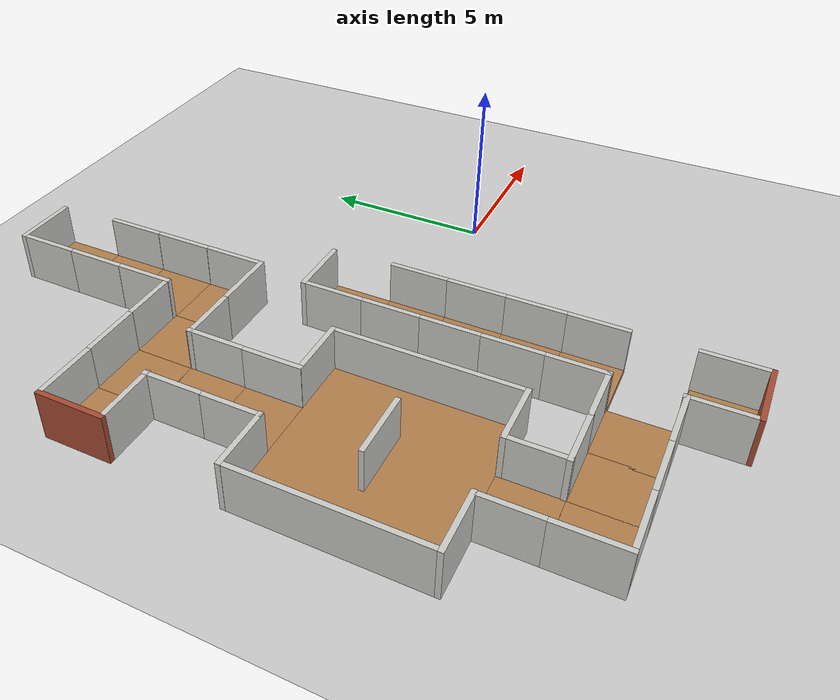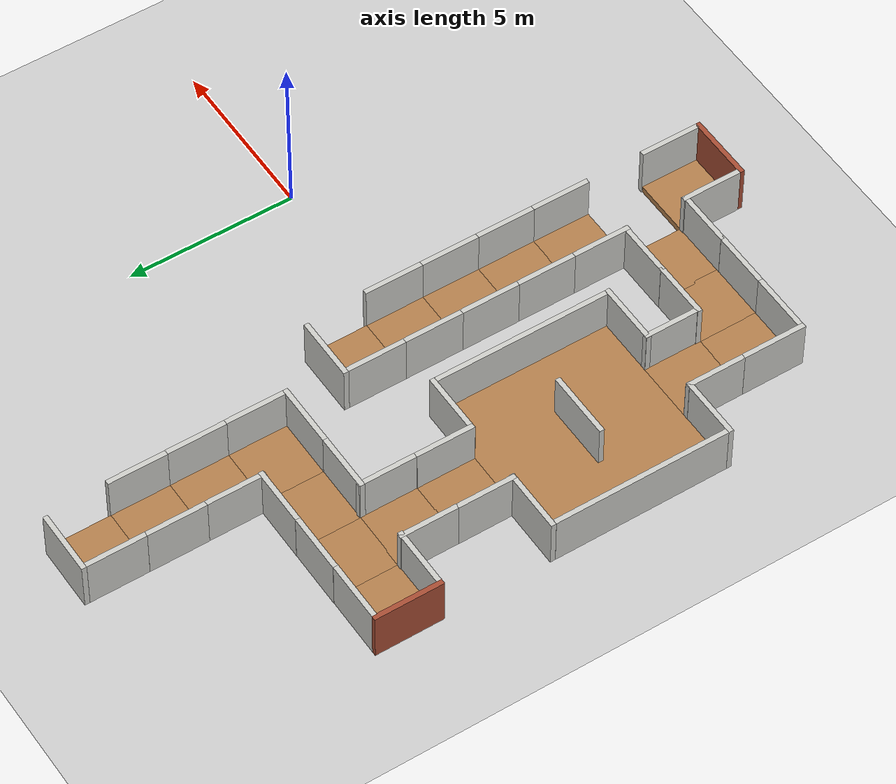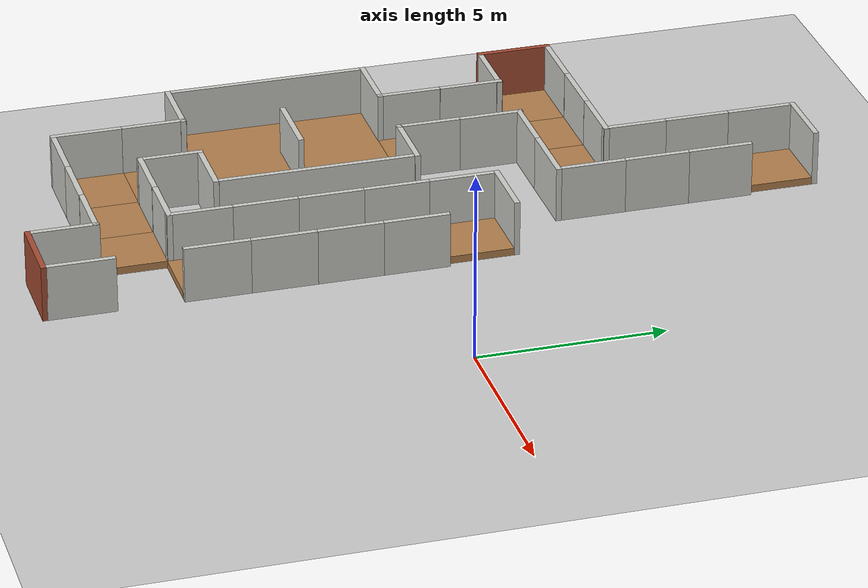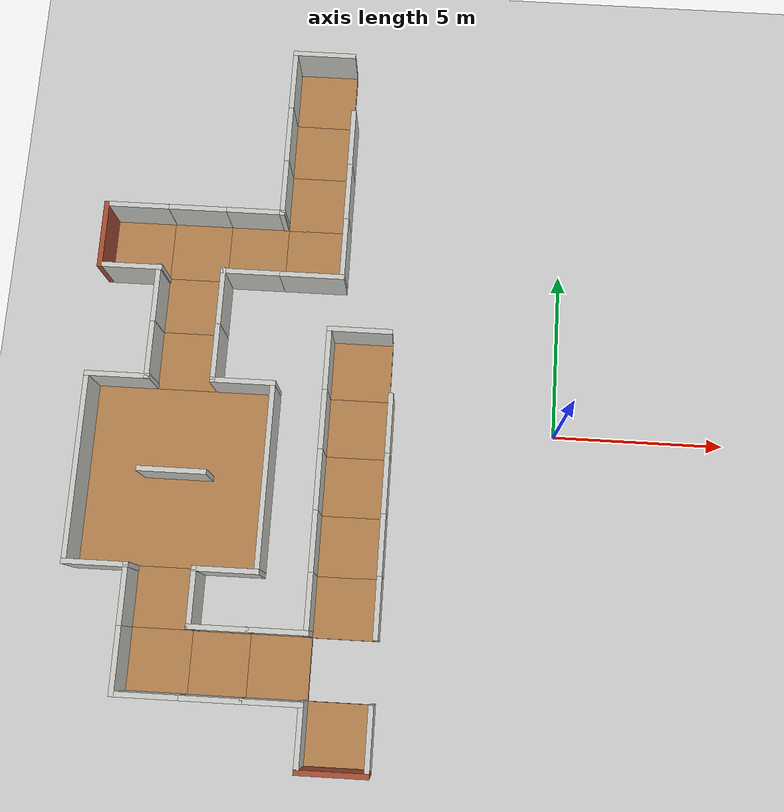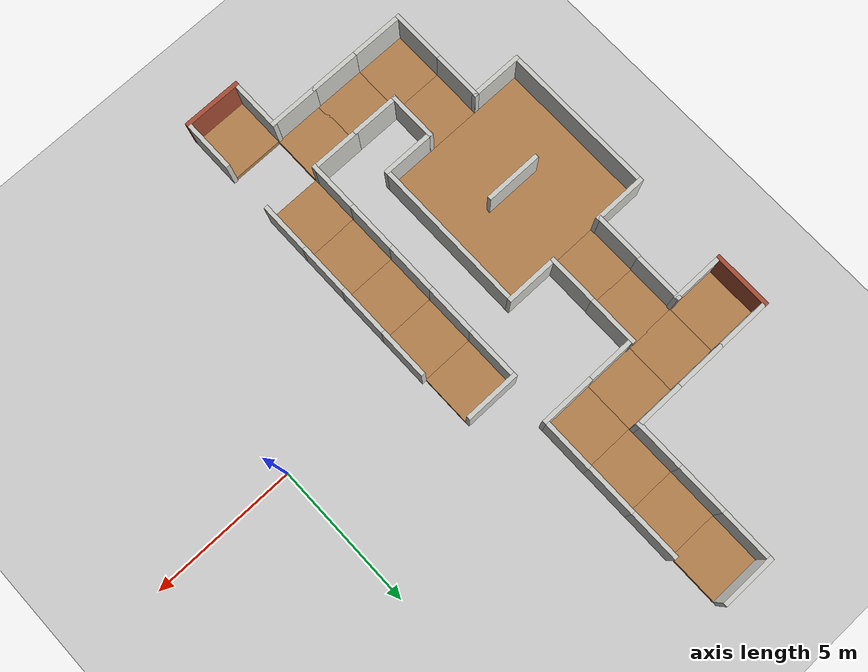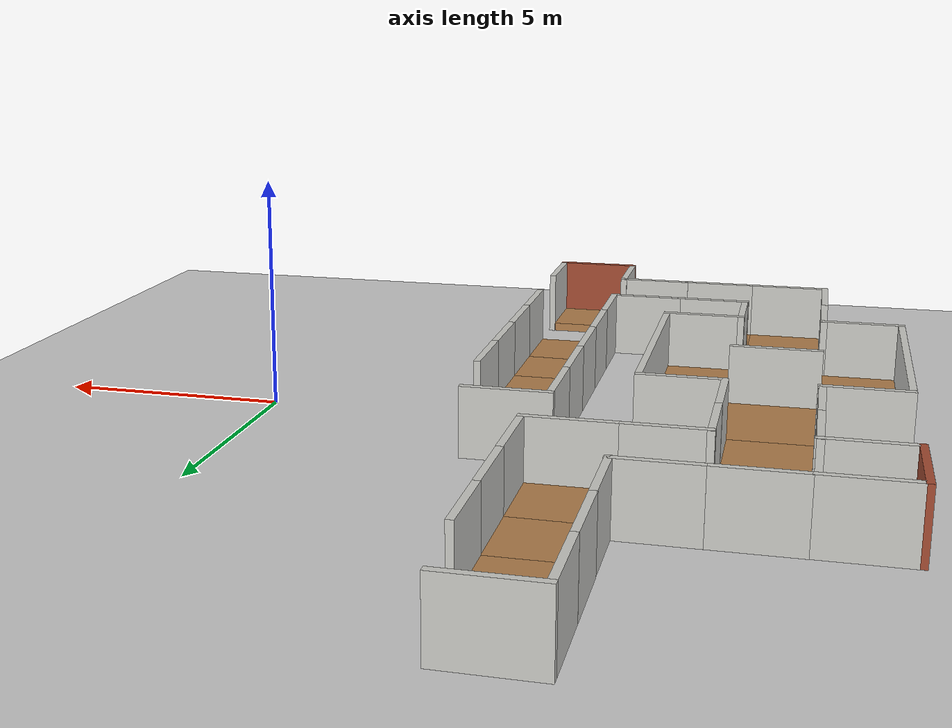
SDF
<sdf version="1.6">
 <world name="default">
  <model name="ground_plane">
   <static>1</static>
   <link name="link">
    <collision name="collision">
     <geometry><plane><normal>0 0 1</normal><size>100 100</size></plane></geometry>
     <surface><friction><ode><mu>100</mu><mu2>50</mu2></ode></friction></surface>
    </collision>
    <visual name="visual">
     <cast_shadows>0</cast_shadows>
     <geometry><plane><normal>0 0 1</normal><size>100 100</size></plane></geometry>
     <material>
      <script><uri>file://media/materials/scripts/gazebo.material</uri><name>Gazebo/Grey</name></script>
     </material>
    </visual>
   </link>
  </model>
  <model name="nerve_corner_9">
   <pose>-5.86899 1.703 0 0 -0 0</pose>
   <link name="Wall_0">
    <collision name="Wall_0_Collision">
     <geometry><box><size>1.76 1.75 0.2</size></box></geometry>
     <pose>0 0 0.1 0 -0 0</pose>
    </collision>
    <visual name="Wall_0_Visual">
     <pose>0 0 0.1 0 -0 0</pose>
     <geometry><box><size>1.76 1.75 0.2</size></box></geometry>
     <material>
      <script><uri>file://media/materials/scripts/gazebo.material</uri><name>Gazebo/Wood</name></script>
      <ambient>1 0.764706 0.305882 1</ambient>
     </material>
    </visual>
    <pose>0.077507 -0.077007 0 0 -0 3.14159</pose>
   </link>
   <link name="Wall_2">
    <collision name="Wall_2_Collision">
     <geometry><box><size>1.75 0.15 1.5</size></box></geometry>
     <pose>0 0 0.75 0 -0 0</pose>
    </collision>
    <visual name="Wall_2_Visual">
     <pose>0 0 0.75 0 -0 0</pose>
     <geometry><box><size>1.75 0.15 1.5</size></box></geometry>
     <material>
      <script><uri>file://media/materials/scripts/gazebo.material</uri><name>Gazebo/CeilingTiled</name></script>
      <ambient>1 0.764706 0.305882 1</ambient>
     </material>
    </visual>
    <pose>-0.882493 -0.073007 0 0 0 -1.5708</pose>
   </link>
   <link name="Wall_4">
    <collision name="Wall_4_Collision">
     <geometry><box><size>1.91042 0.15 1.5</size></box></geometry>
     <pose>0 0 0.75 0 -0 0</pose>
    </collision>
    <visual name="Wall_4_Visual">
     <pose>0 0 0.75 0 -0 0</pose>
     <geometry><box><size>1.91042 0.15 1.5</size></box></geometry>
     <material>
      <script><uri>file://media/materials/scripts/gazebo.material</uri><name>Gazebo/CeilingTiled</name></script>
      <ambient>1 0.764706 0.305882 1</ambient>
     </material>
    </visual>
    <pose>-0.002284 0.876825 0 0 -0 3.1414</pose>
   </link>
   <static>1</static>
  </model>
  <model name="nerve_straight_10">
   <pose>-5.79649 -0.117781 0 0 -0 0</pose>
   <link name="Wall_0">
    <collision name="Wall_0_Collision">
     <geometry><box><size>1.76 1.75 0.2</size></box></geometry>
     <pose>0 0 0.1 0 -0 0</pose>
    </collision>
    <visual name="Wall_0_Visual">
     <pose>0 0 0.1 0 -0 0</pose>
     <geometry><box><size>1.76 1.75 0.2</size></box></geometry>
     <material>
      <script><uri>file://media/materials/scripts/gazebo.material</uri><name>Gazebo/Wood</name></script>
      <ambient>1 0.764706 0.305882 1</ambient>
     </material>
    </visual>
    <pose>0.005 -0.002 0 0 -0 3.14159</pose>
   </link>
   <link name="Wall_2">
    <collision name="Wall_2_Collision">
     <geometry><box><size>1.75 0.15 1.5</size></box></geometry>
     <pose>0 0 0.75 0 -0 0</pose>
    </collision>
    <visual name="Wall_2_Visual">
     <pose>0 0 0.75 0 -0 0</pose>
     <geometry><box><size>1.75 0.15 1.5</size></box></geometry>
     <material>
      <script><uri>file://media/materials/scripts/gazebo.material</uri><name>Gazebo/CeilingTiled</name></script>
      <ambient>1 0.764706 0.305882 1</ambient>
     </material>
    </visual>
    <pose>-0.955 0.002 0 0 0 -1.5708</pose>
   </link>
   <link name="Wall_4">
    <collision name="Wall_4_Collision">
     <geometry><box><size>1.75 0.15 1.5</size></box></geometry>
     <pose>0 0 0.75 0 -0 0</pose>
    </collision>
    <visual name="Wall_4_Visual">
     <pose>0 0 0.75 0 -0 0</pose>
     <geometry><box><size>1.75 0.15 1.5</size></box></geometry>
     <material>
      <script><uri>file://media/materials/scripts/gazebo.material</uri><name>Gazebo/CeilingTiled</name></script>
      <ambient>1 0.764706 0.305882 1</ambient>
     </material>
    </visual>
    <pose>0.955 0.002 0 0 0 -1.5708</pose>
   </link>
   <static>1</static>
  </model>
  <model name="nerve_straight_10_clone">
   <pose>-5.79649 -1.8585 0 0 -0 0</pose>
   <link name="Wall_0">
    <collision name="Wall_0_Collision">
     <geometry><box><size>1.76 1.75 0.2</size></box></geometry>
     <pose>0 0 0.1 0 -0 0</pose>
    </collision>
    <visual name="Wall_0_Visual">
     <pose>0 0 0.1 0 -0 0</pose>
     <geometry><box><size>1.76 1.75 0.2</size></box></geometry>
     <material>
      <script><uri>file://media/materials/scripts/gazebo.material</uri><name>Gazebo/Wood</name></script>
      <ambient>1 0.764706 0.305882 1</ambient>
     </material>
    </visual>
    <pose>0.005 -0.002 0 0 -0 3.14159</pose>
   </link>
   <link name="Wall_2">
    <collision name="Wall_2_Collision">
     <geometry><box><size>1.75 0.15 1.5</size></box></geometry>
     <pose>0 0 0.75 0 -0 0</pose>
    </collision>
    <visual name="Wall_2_Visual">
     <pose>0 0 0.75 0 -0 0</pose>
     <geometry><box><size>1.75 0.15 1.5</size></box></geometry>
     <material>
      <script><uri>file://media/materials/scripts/gazebo.material</uri><name>Gazebo/CeilingTiled</name></script>
      <ambient>1 0.764706 0.305882 1</ambient>
     </material>
    </visual>
    <pose>-0.955 0.002 0 0 0 -1.5708</pose>
   </link>
   <link name="Wall_4">
    <collision name="Wall_4_Collision">
     <geometry><box><size>1.75 0.15 1.5</size></box></geometry>
     <pose>0 0 0.75 0 -0 0</pose>
    </collision>
    <visual name="Wall_4_Visual">
     <pose>0 0 0.75 0 -0 0</pose>
     <geometry><box><size>1.75 0.15 1.5</size></box></geometry>
     <material>
      <script><uri>file://media/materials/scripts/gazebo.material</uri><name>Gazebo/CeilingTiled</name></script>
      <ambient>1 0.764706 0.305882 1</ambient>
     </material>
    </visual>
    <pose>0.955 0.002 0 0 0 -1.5708</pose>
   </link>
   <static>1</static>
  </model>
  <model name="nerve_straight_10_clone_0">
   <pose>-5.79649 -3.60725 0 0 -0 0</pose>
   <link name="Wall_0">
    <collision name="Wall_0_Collision">
     <geometry><box><size>1.76 1.75 0.2</size></box></geometry>
     <pose>0 0 0.1 0 -0 0</pose>
    </collision>
    <visual name="Wall_0_Visual">
     <pose>0 0 0.1 0 -0 0</pose>
     <geometry><box><size>1.76 1.75 0.2</size></box></geometry>
     <material>
      <script><uri>file://media/materials/scripts/gazebo.material</uri><name>Gazebo/Wood</name></script>
      <ambient>1 0.764706 0.305882 1</ambient>
     </material>
    </visual>
    <pose>0.005 -0.002 0 0 -0 3.14159</pose>
   </link>
   <link name="Wall_2">
    <collision name="Wall_2_Collision">
     <geometry><box><size>1.75 0.15 1.5</size></box></geometry>
     <pose>0 0 0.75 0 -0 0</pose>
    </collision>
    <visual name="Wall_2_Visual">
     <pose>0 0 0.75 0 -0 0</pose>
     <geometry><box><size>1.75 0.15 1.5</size></box></geometry>
     <material>
      <script><uri>file://media/materials/scripts/gazebo.material</uri><name>Gazebo/CeilingTiled</name></script>
      <ambient>1 0.764706 0.305882 1</ambient>
     </material>
    </visual>
    <pose>-0.955 0.002 0 0 0 -1.5708</pose>
   </link>
   <link name="Wall_4">
    <collision name="Wall_4_Collision">
     <geometry><box><size>1.75 0.15 1.5</size></box></geometry>
     <pose>0 0 0.75 0 -0 0</pose>
    </collision>
    <visual name="Wall_4_Visual">
     <pose>0 0 0.75 0 -0 0</pose>
     <geometry><box><size>1.75 0.15 1.5</size></box></geometry>
     <material>
      <script><uri>file://media/materials/scripts/gazebo.material</uri><name>Gazebo/CeilingTiled</name></script>
      <ambient>1 0.764706 0.305882 1</ambient>
     </material>
    </visual>
    <pose>0.955 0.002 0 0 0 -1.5708</pose>
   </link>
   <static>1</static>
  </model>
  <model name="nerve_straight_10_clone_1">
   <pose>-5.79649 -5.34509 0 0 -0 0</pose>
   <link name="Wall_0">
    <collision name="Wall_0_Collision">
     <geometry><box><size>1.76 1.75 0.2</size></box></geometry>
     <pose>0 0 0.1 0 -0 0</pose>
    </collision>
    <visual name="Wall_0_Visual">
     <pose>0 0 0.1 0 -0 0</pose>
     <geometry><box><size>1.76 1.75 0.2</size></box></geometry>
     <material>
      <script><uri>file://media/materials/scripts/gazebo.material</uri><name>Gazebo/Wood</name></script>
      <ambient>1 0.764706 0.305882 1</ambient>
     </material>
    </visual>
    <pose>0.005 -0.002 0 0 -0 3.14159</pose>
   </link>
   <link name="Wall_2">
    <collision name="Wall_2_Collision">
     <geometry><box><size>1.75 0.15 1.5</size></box></geometry>
     <pose>0 0 0.75 0 -0 0</pose>
    </collision>
    <visual name="Wall_2_Visual">
     <pose>0 0 0.75 0 -0 0</pose>
     <geometry><box><size>1.75 0.15 1.5</size></box></geometry>
     <material>
      <script><uri>file://media/materials/scripts/gazebo.material</uri><name>Gazebo/CeilingTiled</name></script>
      <ambient>1 0.764706 0.305882 1</ambient>
     </material>
    </visual>
    <pose>-0.955 0.002 0 0 0 -1.5708</pose>
   </link>
   <link name="Wall_4">
    <collision name="Wall_4_Collision">
     <geometry><box><size>1.75 0.15 1.5</size></box></geometry>
     <pose>0 0 0.75 0 -0 0</pose>
    </collision>
    <visual name="Wall_4_Visual">
     <pose>0 0 0.75 0 -0 0</pose>
     <geometry><box><size>1.75 0.15 1.5</size></box></geometry>
     <material>
      <script><uri>file://media/materials/scripts/gazebo.material</uri><name>Gazebo/CeilingTiled</name></script>
      <ambient>1 0.764706 0.305882 1</ambient>
     </material>
    </visual>
    <pose>0.955 0.002 0 0 0 -1.5708</pose>
   </link>
   <static>1</static>
  </model>
  <model name="nerve_corner_11">
   <pose>-11.0361 -7.16167 0 0 -0 1.5708</pose>
   <link name="Wall_0">
    <collision name="Wall_0_Collision">
     <geometry><box><size>1.76 1.75 0.2</size></box></geometry>
     <pose>0 0 0.1 0 -0 0</pose>
    </collision>
    <visual name="Wall_0_Visual">
     <pose>0 0 0.1 0 -0 0</pose>
     <geometry><box><size>1.76 1.75 0.2</size></box></geometry>
     <material>
      <script><uri>file://media/materials/scripts/gazebo.material</uri><name>Gazebo/Wood</name></script>
      <ambient>1 0.764706 0.305882 1</ambient>
     </material>
    </visual>
    <pose>0.077507 -0.077007 0 0 -0 3.14159</pose>
   </link>
   <link name="Wall_2">
    <collision name="Wall_2_Collision">
     <geometry><box><size>1.75 0.15 1.5</size></box></geometry>
     <pose>0 0 0.75 0 -0 0</pose>
    </collision>
    <visual name="Wall_2_Visual">
     <pose>0 0 0.75 0 -0 0</pose>
     <geometry><box><size>1.75 0.15 1.5</size></box></geometry>
     <material>
      <script><uri>file://media/materials/scripts/gazebo.material</uri><name>Gazebo/CeilingTiled</name></script>
      <ambient>1 0.764706 0.305882 1</ambient>
     </material>
    </visual>
    <pose>-0.882493 -0.073007 0 0 0 -1.5708</pose>
   </link>
   <link name="Wall_4">
    <collision name="Wall_4_Collision">
     <geometry><box><size>1.91042 0.15 1.5</size></box></geometry>
     <pose>0 0 0.75 0 -0 0</pose>
    </collision>
    <visual name="Wall_4_Visual">
     <pose>0 0 0.75 0 -0 0</pose>
     <geometry><box><size>1.91042 0.15 1.5</size></box></geometry>
     <material>
      <script><uri>file://media/materials/scripts/gazebo.material</uri><name>Gazebo/CeilingTiled</name></script>
      <ambient>1 0.764706 0.305882 1</ambient>
     </material>
    </visual>
    <pose>-0.002284 0.876825 0 0 -0 3.1414</pose>
   </link>
   <static>1</static>
  </model>
  <model name="nerve_straight_10_clone_1_clone">
   <pose>-10.9569 -5.3391 0 0 -0 0</pose>
   <link name="Wall_0">
    <collision name="Wall_0_Collision">
     <geometry><box><size>1.76 1.75 0.2</size></box></geometry>
     <pose>0 0 0.1 0 -0 0</pose>
    </collision>
    <visual name="Wall_0_Visual">
     <pose>0 0 0.1 0 -0 0</pose>
     <geometry><box><size>1.76 1.75 0.2</size></box></geometry>
     <material>
      <script><uri>file://media/materials/scripts/gazebo.material</uri><name>Gazebo/Wood</name></script>
      <ambient>1 0.764706 0.305882 1</ambient>
     </material>
    </visual>
    <pose>0.005 -0.002 0 0 -0 3.14159</pose>
   </link>
   <link name="Wall_2">
    <collision name="Wall_2_Collision">
     <geometry><box><size>1.75 0.15 1.5</size></box></geometry>
     <pose>0 0 0.75 0 -0 0</pose>
    </collision>
    <visual name="Wall_2_Visual">
     <pose>0 0 0.75 0 -0 0</pose>
     <geometry><box><size>1.75 0.15 1.5</size></box></geometry>
     <material>
      <script><uri>file://media/materials/scripts/gazebo.material</uri><name>Gazebo/CeilingTiled</name></script>
      <ambient>1 0.764706 0.305882 1</ambient>
     </material>
    </visual>
    <pose>-0.955 0.002 0 0 0 -1.5708</pose>
   </link>
   <link name="Wall_4">
    <collision name="Wall_4_Collision">
     <geometry><box><size>1.75 0.15 1.5</size></box></geometry>
     <pose>0 0 0.75 0 -0 0</pose>
    </collision>
    <visual name="Wall_4_Visual">
     <pose>0 0 0.75 0 -0 0</pose>
     <geometry><box><size>1.75 0.15 1.5</size></box></geometry>
     <material>
      <script><uri>file://media/materials/scripts/gazebo.material</uri><name>Gazebo/CeilingTiled</name></script>
      <ambient>1 0.764706 0.305882 1</ambient>
     </material>
    </visual>
    <pose>0.955 0.002 0 0 0 -1.5708</pose>
   </link>
   <static>1</static>
  </model>
  <model name="nerve_straight_10_clone_1_clone_0">
   <pose>-7.54894 -7.08598 0 0 0 -1.5708</pose>
   <link name="Wall_0">
    <collision name="Wall_0_Collision">
     <geometry><box><size>1.76 1.75 0.2</size></box></geometry>
     <pose>0 0 0.1 0 -0 0</pose>
    </collision>
    <visual name="Wall_0_Visual">
     <pose>0 0 0.1 0 -0 0</pose>
     <geometry><box><size>1.76 1.75 0.2</size></box></geometry>
     <material>
      <script><uri>file://media/materials/scripts/gazebo.material</uri><name>Gazebo/Wood</name></script>
      <ambient>1 0.764706 0.305882 1</ambient>
     </material>
    </visual>
    <pose>0.005 -0.002 0 0 -0 3.14159</pose>
   </link>
   <link name="Wall_2">
    <collision name="Wall_2_Collision">
     <geometry><box><size>1.75 0.15 1.5</size></box></geometry>
     <pose>0 0 0.75 0 -0 0</pose>
    </collision>
    <visual name="Wall_2_Visual">
     <pose>0 0 0.75 0 -0 0</pose>
     <geometry><box><size>1.75 0.15 1.5</size></box></geometry>
     <material>
      <script><uri>file://media/materials/scripts/gazebo.material</uri><name>Gazebo/CeilingTiled</name></script>
      <ambient>1 0.764706 0.305882 1</ambient>
     </material>
    </visual>
    <pose>-0.955 0.002 0 0 0 -1.5708</pose>
   </link>
   <link name="Wall_4">
    <collision name="Wall_4_Collision">
     <geometry><box><size>1.75 0.15 1.5</size></box></geometry>
     <pose>0 0 0.75 0 -0 0</pose>
    </collision>
    <visual name="Wall_4_Visual">
     <pose>0 0 0.75 0 -0 0</pose>
     <geometry><box><size>1.75 0.15 1.5</size></box></geometry>
     <material>
      <script><uri>file://media/materials/scripts/gazebo.material</uri><name>Gazebo/CeilingTiled</name></script>
      <ambient>1 0.764706 0.305882 1</ambient>
     </material>
    </visual>
    <pose>0.955 0.002 0 0 0 -1.5708</pose>
   </link>
   <static>1</static>
  </model>
  <model name="nerve_room_3x3_split">
   <pose>-10.9537 -1.84017 0 0 -0 0</pose>
   <link name="Wall_11">
    <collision name="Wall_11_Collision">
     <geometry><box><size>5.25 0.15 1.5</size></box></geometry>
     <pose>0 0 0.75 0 -0 0</pose>
    </collision>
    <visual name="Wall_11_Visual">
     <pose>0 0 0.75 0 -0 0</pose>
     <geometry><box><size>5.25 0.15 1.5</size></box></geometry>
     <material>
      <script><uri>file://media/materials/scripts/gazebo.material</uri><name>Gazebo/CeilingTiled</name></script>
      <ambient>1 0.764706 0.305882 1</ambient>
     </material>
    </visual>
    <pose>-2.69653 -0.003278 0 0 0 -1.5708</pose>
   </link>
   <link name="Wall_13">
    <collision name="Wall_13_Collision">
     <geometry><box><size>5.25 0.15 1.5</size></box></geometry>
     <pose>0 0 0.75 0 -0 0</pose>
    </collision>
    <visual name="Wall_13_Visual">
     <pose>0 0 0.75 0 -0 0</pose>
     <geometry><box><size>5.25 0.15 1.5</size></box></geometry>
     <material>
      <script><uri>file://media/materials/scripts/gazebo.material</uri><name>Gazebo/CeilingTiled</name></script>
      <ambient>1 0.764706 0.305882 1</ambient>
     </material>
    </visual>
    <pose>2.69688 -0.000452 0 0 0 -1.5708</pose>
   </link>
   <link name="Wall_15">
    <collision name="Wall_15_Collision">
     <geometry><box><size>1.9 0.15 1.5</size></box></geometry>
     <pose>0 0 0.75 0 -0 0</pose>
    </collision>
    <visual name="Wall_15_Visual">
     <pose>0 0 0.75 0 -0 0</pose>
     <geometry><box><size>1.9 0.15 1.5</size></box></geometry>
     <material>
      <script><uri>file://media/materials/scripts/gazebo.material</uri><name>Gazebo/CeilingTiled</name></script>
      <ambient>1 0.764706 0.305882 1</ambient>
     </material>
    </visual>
    <pose>-1.82279 -2.70217 0 0 -0 0</pose>
   </link>
   <link name="Wall_17">
    <collision name="Wall_17_Collision">
     <geometry><box><size>1.9 0.15 1.5</size></box></geometry>
     <pose>0 0 0.75 0 -0 0</pose>
    </collision>
    <visual name="Wall_17_Visual">
     <pose>0 0 0.75 0 -0 0</pose>
     <geometry><box><size>1.9 0.15 1.5</size></box></geometry>
     <material>
      <script><uri>file://media/materials/scripts/gazebo.material</uri><name>Gazebo/CeilingTiled</name></script>
      <ambient>1 0.764706 0.305882 1</ambient>
     </material>
    </visual>
    <pose>-1.82219 2.69878 0 0 -0 0</pose>
   </link>
   <link name="Wall_19">
    <collision name="Wall_19_Collision">
     <geometry><box><size>1.9 0.15 1.5</size></box></geometry>
     <pose>0 0 0.75 0 -0 0</pose>
    </collision>
    <visual name="Wall_19_Visual">
     <pose>0 0 0.75 0 -0 0</pose>
     <geometry><box><size>1.9 0.15 1.5</size></box></geometry>
     <material>
      <script><uri>file://media/materials/scripts/gazebo.material</uri><name>Gazebo/CeilingTiled</name></script>
      <ambient>1 0.764706 0.305882 1</ambient>
     </material>
    </visual>
    <pose>1.82194 2.70217 0 0 -0 0</pose>
   </link>
   <link name="Wall_21">
    <collision name="Wall_21_Collision">
     <geometry><box><size>1.9 0.15 1.5</size></box></geometry>
     <pose>0 0 0.75 0 -0 0</pose>
    </collision>
    <visual name="Wall_21_Visual">
     <pose>0 0 0.75 0 -0 0</pose>
     <geometry><box><size>1.9 0.15 1.5</size></box></geometry>
     <material>
      <script><uri>file://media/materials/scripts/gazebo.material</uri><name>Gazebo/CeilingTiled</name></script>
      <ambient>1 0.764706 0.305882 1</ambient>
     </material>
    </visual>
    <pose>1.82279 -2.70173 0 0 -0 0</pose>
   </link>
   <link name="Wall_23">
    <collision name="Wall_23_Collision">
     <geometry><box><size>2 0.15 1.5</size></box></geometry>
     <pose>0 0 0.75 0 -0 0</pose>
    </collision>
    <visual name="Wall_23_Visual">
     <pose>0 0 0.75 0 -0 0</pose>
     <geometry><box><size>2 0.15 1.5</size></box></geometry>
     <material>
      <script><uri>file://media/materials/scripts/gazebo.material</uri><name>Gazebo/CeilingTiled</name></script>
      <ambient>1 0.764706 0.305882 1</ambient>
     </material>
    </visual>
    <pose>0.033144 0.01482 0 0 -0 0</pose>
   </link>
   <link name="Wall_6">
    <collision name="Wall_6_Collision">
     <geometry><box><size>5.26 5.25 0.2</size></box></geometry>
     <pose>0 0 0.1 0 -0 0</pose>
    </collision>
    <visual name="Wall_6_Visual">
     <pose>0 0 0.1 0 -0 0</pose>
     <geometry><box><size>5.26 5.25 0.2</size></box></geometry>
     <material>
      <script><uri>file://media/materials/scripts/gazebo.material</uri><name>Gazebo/Wood</name></script>
      <ambient>1 0.764706 0.305882 1</ambient>
     </material>
    </visual>
    <pose>-0.001194 0.003047 0 0 -0 1.5708</pose>
   </link>
   <static>1</static>
  </model>
  <model name="nerve_straight_10_clone_1_clone_0_clone">
   <pose>-9.21654 -7.08997 0 0 0 -1.5708</pose>
   <link name="Wall_0">
    <collision name="Wall_0_Collision">
     <geometry><box><size>1.76 1.75 0.2</size></box></geometry>
     <pose>0 0 0.1 0 -0 0</pose>
    </collision>
    <visual name="Wall_0_Visual">
     <pose>0 0 0.1 0 -0 0</pose>
     <geometry><box><size>1.76 1.75 0.2</size></box></geometry>
     <material>
      <script><uri>file://media/materials/scripts/gazebo.material</uri><name>Gazebo/Wood</name></script>
      <ambient>1 0.764706 0.305882 1</ambient>
     </material>
    </visual>
    <pose>0.005 -0.002 0 0 -0 3.14159</pose>
   </link>
   <link name="Wall_2">
    <collision name="Wall_2_Collision">
     <geometry><box><size>1.75 0.15 1.5</size></box></geometry>
     <pose>0 0 0.75 0 -0 0</pose>
    </collision>
    <visual name="Wall_2_Visual">
     <pose>0 0 0.75 0 -0 0</pose>
     <geometry><box><size>1.75 0.15 1.5</size></box></geometry>
     <material>
      <script><uri>file://media/materials/scripts/gazebo.material</uri><name>Gazebo/CeilingTiled</name></script>
      <ambient>1 0.764706 0.305882 1</ambient>
     </material>
    </visual>
    <pose>-0.955 0.002 0 0 0 -1.5708</pose>
   </link>
   <link name="Wall_4">
    <collision name="Wall_4_Collision">
     <geometry><box><size>1.75 0.15 1.5</size></box></geometry>
     <pose>0 0 0.75 0 -0 0</pose>
    </collision>
    <visual name="Wall_4_Visual">
     <pose>0 0 0.75 0 -0 0</pose>
     <geometry><box><size>1.75 0.15 1.5</size></box></geometry>
     <material>
      <script><uri>file://media/materials/scripts/gazebo.material</uri><name>Gazebo/CeilingTiled</name></script>
      <ambient>1 0.764706 0.305882 1</ambient>
     </material>
    </visual>
    <pose>0.955 0.002 0 0 0 -1.5708</pose>
   </link>
   <static>1</static>
  </model>
  <model name="nerve_straight_10_clone_0_clone">
   <pose>-10.9639 1.66579 0 0 -0 0</pose>
   <link name="Wall_0">
    <collision name="Wall_0_Collision">
     <geometry><box><size>1.76 1.75 0.2</size></box></geometry>
     <pose>0 0 0.1 0 -0 0</pose>
    </collision>
    <visual name="Wall_0_Visual">
     <pose>0 0 0.1 0 -0 0</pose>
     <geometry><box><size>1.76 1.75 0.2</size></box></geometry>
     <material>
      <script><uri>file://media/materials/scripts/gazebo.material</uri><name>Gazebo/Wood</name></script>
      <ambient>1 0.764706 0.305882 1</ambient>
     </material>
    </visual>
    <pose>0.005 -0.002 0 0 -0 3.14159</pose>
   </link>
   <link name="Wall_2">
    <collision name="Wall_2_Collision">
     <geometry><box><size>1.75 0.15 1.5</size></box></geometry>
     <pose>0 0 0.75 0 -0 0</pose>
    </collision>
    <visual name="Wall_2_Visual">
     <pose>0 0 0.75 0 -0 0</pose>
     <geometry><box><size>1.75 0.15 1.5</size></box></geometry>
     <material>
      <script><uri>file://media/materials/scripts/gazebo.material</uri><name>Gazebo/CeilingTiled</name></script>
      <ambient>1 0.764706 0.305882 1</ambient>
     </material>
    </visual>
    <pose>-0.955 0.002 0 0 0 -1.5708</pose>
   </link>
   <link name="Wall_4">
    <collision name="Wall_4_Collision">
     <geometry><box><size>1.75 0.15 1.5</size></box></geometry>
     <pose>0 0 0.75 0 -0 0</pose>
    </collision>
    <visual name="Wall_4_Visual">
     <pose>0 0 0.75 0 -0 0</pose>
     <geometry><box><size>1.75 0.15 1.5</size></box></geometry>
     <material>
      <script><uri>file://media/materials/scripts/gazebo.material</uri><name>Gazebo/CeilingTiled</name></script>
      <ambient>1 0.764706 0.305882 1</ambient>
     </material>
    </visual>
    <pose>0.955 0.002 0 0 0 -1.5708</pose>
   </link>
   <static>1</static>
  </model>
  <model name="nerve_straight_10_clone_0_clone_0">
   <pose>-10.9587 3.39384 0 0 -0 0</pose>
   <link name="Wall_0">
    <collision name="Wall_0_Collision">
     <geometry><box><size>1.76 1.75 0.2</size></box></geometry>
     <pose>0 0 0.1 0 -0 0</pose>
    </collision>
    <visual name="Wall_0_Visual">
     <pose>0 0 0.1 0 -0 0</pose>
     <geometry><box><size>1.76 1.75 0.2</size></box></geometry>
     <material>
      <script><uri>file://media/materials/scripts/gazebo.material</uri><name>Gazebo/Wood</name></script>
      <ambient>1 0.764706 0.305882 1</ambient>
     </material>
    </visual>
    <pose>0.005 -0.002 0 0 -0 3.14159</pose>
   </link>
   <link name="Wall_2">
    <collision name="Wall_2_Collision">
     <geometry><box><size>1.75 0.15 1.5</size></box></geometry>
     <pose>0 0 0.75 0 -0 0</pose>
    </collision>
    <visual name="Wall_2_Visual">
     <pose>0 0 0.75 0 -0 0</pose>
     <geometry><box><size>1.75 0.15 1.5</size></box></geometry>
     <material>
      <script><uri>file://media/materials/scripts/gazebo.material</uri><name>Gazebo/CeilingTiled</name></script>
      <ambient>1 0.764706 0.305882 1</ambient>
     </material>
    </visual>
    <pose>-0.955 0.002 0 0 0 -1.5708</pose>
   </link>
   <link name="Wall_4">
    <collision name="Wall_4_Collision">
     <geometry><box><size>1.75 0.15 1.5</size></box></geometry>
     <pose>0 0 0.75 0 -0 0</pose>
    </collision>
    <visual name="Wall_4_Visual">
     <pose>0 0 0.75 0 -0 0</pose>
     <geometry><box><size>1.75 0.15 1.5</size></box></geometry>
     <material>
      <script><uri>file://media/materials/scripts/gazebo.material</uri><name>Gazebo/CeilingTiled</name></script>
      <ambient>1 0.764706 0.305882 1</ambient>
     </material>
    </visual>
    <pose>0.955 0.002 0 0 0 -1.5708</pose>
   </link>
   <static>1</static>
  </model>
  <model name="nerve_straight_9_clone">
   <pose>-9.20822 5.12464 0 0 0 -1.5708</pose>
   <link name="Wall_0">
    <collision name="Wall_0_Collision">
     <geometry><box><size>1.76 1.75 0.2</size></box></geometry>
     <pose>0 0 0.1 0 -0 0</pose>
    </collision>
    <visual name="Wall_0_Visual">
     <pose>0 0 0.1 0 -0 0</pose>
     <geometry><box><size>1.76 1.75 0.2</size></box></geometry>
     <material>
      <script><uri>file://media/materials/scripts/gazebo.material</uri><name>Gazebo/Wood</name></script>
      <ambient>1 0.764706 0.305882 1</ambient>
     </material>
    </visual>
    <pose>0.005 -0.002 0 0 -0 3.14159</pose>
   </link>
   <link name="Wall_2">
    <collision name="Wall_2_Collision">
     <geometry><box><size>1.75 0.15 1.5</size></box></geometry>
     <pose>0 0 0.75 0 -0 0</pose>
    </collision>
    <visual name="Wall_2_Visual">
     <pose>0 0 0.75 0 -0 0</pose>
     <geometry><box><size>1.75 0.15 1.5</size></box></geometry>
     <material>
      <script><uri>file://media/materials/scripts/gazebo.material</uri><name>Gazebo/CeilingTiled</name></script>
      <ambient>1 0.764706 0.305882 1</ambient>
     </material>
    </visual>
    <pose>-0.955 0.002 0 0 0 -1.5708</pose>
   </link>
   <link name="Wall_4">
    <collision name="Wall_4_Collision">
     <geometry><box><size>1.75 0.15 1.5</size></box></geometry>
     <pose>0 0 0.75 0 -0 0</pose>
    </collision>
    <visual name="Wall_4_Visual">
     <pose>0 0 0.75 0 -0 0</pose>
     <geometry><box><size>1.75 0.15 1.5</size></box></geometry>
     <material>
      <script><uri>file://media/materials/scripts/gazebo.material</uri><name>Gazebo/CeilingTiled</name></script>
      <ambient>1 0.764706 0.305882 1</ambient>
     </material>
    </visual>
    <pose>0.955 0.002 0 0 0 -1.5708</pose>
   </link>
   <static>1</static>
  </model>
  <model name="nerve_corner_8_clone_clone">
   <pose>-7.38532 5.04633 0 0 0 -3.14159</pose>
   <link name="Wall_0">
    <collision name="Wall_0_Collision">
     <geometry><box><size>1.76 1.75 0.2</size></box></geometry>
     <pose>0 0 0.1 0 -0 0</pose>
    </collision>
    <visual name="Wall_0_Visual">
     <pose>0 0 0.1 0 -0 0</pose>
     <geometry><box><size>1.76 1.75 0.2</size></box></geometry>
     <material>
      <script><uri>file://media/materials/scripts/gazebo.material</uri><name>Gazebo/Wood</name></script>
      <ambient>1 0.764706 0.305882 1</ambient>
     </material>
    </visual>
    <pose>0.077507 -0.077007 0 0 -0 3.14159</pose>
   </link>
   <link name="Wall_2">
    <collision name="Wall_2_Collision">
     <geometry><box><size>1.75 0.15 1.5</size></box></geometry>
     <pose>0 0 0.75 0 -0 0</pose>
    </collision>
    <visual name="Wall_2_Visual">
     <pose>0 0 0.75 0 -0 0</pose>
     <geometry><box><size>1.75 0.15 1.5</size></box></geometry>
     <material>
      <script><uri>file://media/materials/scripts/gazebo.material</uri><name>Gazebo/CeilingTiled</name></script>
      <ambient>1 0.764706 0.305882 1</ambient>
     </material>
    </visual>
    <pose>-0.882493 -0.073007 0 0 0 -1.5708</pose>
   </link>
   <link name="Wall_4">
    <collision name="Wall_4_Collision">
     <geometry><box><size>1.91042 0.15 1.5</size></box></geometry>
     <pose>0 0 0.75 0 -0 0</pose>
    </collision>
    <visual name="Wall_4_Visual">
     <pose>0 0 0.75 0 -0 0</pose>
     <geometry><box><size>1.91042 0.15 1.5</size></box></geometry>
     <material>
      <script><uri>file://media/materials/scripts/gazebo.material</uri><name>Gazebo/CeilingTiled</name></script>
      <ambient>1 0.764706 0.305882 1</ambient>
     </material>
    </visual>
    <pose>-0.002284 0.876825 0 0 -0 3.1414</pose>
   </link>
   <static>1</static>
  </model>
  <model name="nerve_straight_10_clone_clone">
   <pose>-7.46548 6.86517 0 0 -0 0</pose>
   <link name="Wall_0">
    <collision name="Wall_0_Collision">
     <geometry><box><size>1.76 1.75 0.2</size></box></geometry>
     <pose>0 0 0.1 0 -0 0</pose>
    </collision>
    <visual name="Wall_0_Visual">
     <pose>0 0 0.1 0 -0 0</pose>
     <geometry><box><size>1.76 1.75 0.2</size></box></geometry>
     <material>
      <script><uri>file://media/materials/scripts/gazebo.material</uri><name>Gazebo/Wood</name></script>
      <ambient>1 0.764706 0.305882 1</ambient>
     </material>
    </visual>
    <pose>0.005 -0.002 0 0 -0 3.14159</pose>
   </link>
   <link name="Wall_2">
    <collision name="Wall_2_Collision">
     <geometry><box><size>1.75 0.15 1.5</size></box></geometry>
     <pose>0 0 0.75 0 -0 0</pose>
    </collision>
    <visual name="Wall_2_Visual">
     <pose>0 0 0.75 0 -0 0</pose>
     <geometry><box><size>1.75 0.15 1.5</size></box></geometry>
     <material>
      <script><uri>file://media/materials/scripts/gazebo.material</uri><name>Gazebo/CeilingTiled</name></script>
      <ambient>1 0.764706 0.305882 1</ambient>
     </material>
    </visual>
    <pose>-0.955 0.002 0 0 0 -1.5708</pose>
   </link>
   <link name="Wall_4">
    <collision name="Wall_4_Collision">
     <geometry><box><size>1.75 0.15 1.5</size></box></geometry>
     <pose>0 0 0.75 0 -0 0</pose>
    </collision>
    <visual name="Wall_4_Visual">
     <pose>0 0 0.75 0 -0 0</pose>
     <geometry><box><size>1.75 0.15 1.5</size></box></geometry>
     <material>
      <script><uri>file://media/materials/scripts/gazebo.material</uri><name>Gazebo/CeilingTiled</name></script>
      <ambient>1 0.764706 0.305882 1</ambient>
     </material>
    </visual>
    <pose>0.955 0.002 0 0 0 -1.5708</pose>
   </link>
   <static>1</static>
  </model>
  <model name="nerve_corner_9_clone_0">
   <pose>-7.54165 10.4237 0 0 -0 0</pose>
   <link name="Wall_0">
    <collision name="Wall_0_Collision">
     <geometry><box><size>1.76 1.75 0.2</size></box></geometry>
     <pose>0 0 0.1 0 -0 0</pose>
    </collision>
    <visual name="Wall_0_Visual">
     <pose>0 0 0.1 0 -0 0</pose>
     <geometry><box><size>1.76 1.75 0.2</size></box></geometry>
     <material>
      <script><uri>file://media/materials/scripts/gazebo.material</uri><name>Gazebo/Wood</name></script>
      <ambient>1 0.764706 0.305882 1</ambient>
     </material>
    </visual>
    <pose>0.077507 -0.077007 0 0 -0 3.14159</pose>
   </link>
   <link name="Wall_2">
    <collision name="Wall_2_Collision">
     <geometry><box><size>1.75 0.15 1.5</size></box></geometry>
     <pose>0 0 0.75 0 -0 0</pose>
    </collision>
    <visual name="Wall_2_Visual">
     <pose>0 0 0.75 0 -0 0</pose>
     <geometry><box><size>1.75 0.15 1.5</size></box></geometry>
     <material>
      <script><uri>file://media/materials/scripts/gazebo.material</uri><name>Gazebo/CeilingTiled</name></script>
      <ambient>1 0.764706 0.305882 1</ambient>
     </material>
    </visual>
    <pose>-0.882493 -0.073007 0 0 0 -1.5708</pose>
   </link>
   <link name="Wall_4">
    <collision name="Wall_4_Collision">
     <geometry><box><size>1.91042 0.15 1.5</size></box></geometry>
     <pose>0 0 0.75 0 -0 0</pose>
    </collision>
    <visual name="Wall_4_Visual">
     <pose>0 0 0.75 0 -0 0</pose>
     <geometry><box><size>1.91042 0.15 1.5</size></box></geometry>
     <material>
      <script><uri>file://media/materials/scripts/gazebo.material</uri><name>Gazebo/CeilingTiled</name></script>
      <ambient>1 0.764706 0.305882 1</ambient>
     </material>
    </visual>
    <pose>-0.002284 0.876825 0 0 -0 3.1414</pose>
   </link>
   <static>1</static>
  </model>
  <model name="nerve_straight_10_clone_clone_clone">
   <pose>-7.47032 8.60859 0 0 -0 0</pose>
   <link name="Wall_0">
    <collision name="Wall_0_Collision">
     <geometry><box><size>1.76 1.75 0.2</size></box></geometry>
     <pose>0 0 0.1 0 -0 0</pose>
    </collision>
    <visual name="Wall_0_Visual">
     <pose>0 0 0.1 0 -0 0</pose>
     <geometry><box><size>1.76 1.75 0.2</size></box></geometry>
     <material>
      <script><uri>file://media/materials/scripts/gazebo.material</uri><name>Gazebo/Wood</name></script>
      <ambient>1 0.764706 0.305882 1</ambient>
     </material>
    </visual>
    <pose>0.005 -0.002 0 0 -0 3.14159</pose>
   </link>
   <link name="Wall_2">
    <collision name="Wall_2_Collision">
     <geometry><box><size>1.75 0.15 1.5</size></box></geometry>
     <pose>0 0 0.75 0 -0 0</pose>
    </collision>
    <visual name="Wall_2_Visual">
     <pose>0 0 0.75 0 -0 0</pose>
     <geometry><box><size>1.75 0.15 1.5</size></box></geometry>
     <material>
      <script><uri>file://media/materials/scripts/gazebo.material</uri><name>Gazebo/CeilingTiled</name></script>
      <ambient>1 0.764706 0.305882 1</ambient>
     </material>
    </visual>
    <pose>-0.955 0.002 0 0 0 -1.5708</pose>
   </link>
   <link name="Wall_4">
    <collision name="Wall_4_Collision">
     <geometry><box><size>1.75 0.15 1.5</size></box></geometry>
     <pose>0 0 0.75 0 -0 0</pose>
    </collision>
    <visual name="Wall_4_Visual">
     <pose>0 0 0.75 0 -0 0</pose>
     <geometry><box><size>1.75 0.15 1.5</size></box></geometry>
     <material>
      <script><uri>file://media/materials/scripts/gazebo.material</uri><name>Gazebo/CeilingTiled</name></script>
      <ambient>1 0.764706 0.305882 1</ambient>
     </material>
    </visual>
    <pose>0.955 0.002 0 0 0 -1.5708</pose>
   </link>
   <static>1</static>
  </model>
  <model name="nerve_end_1">
   <pose>-12.7692 5.12243 0 0 -0 1.5708</pose>
   <link name="Wall_0">
    <collision name="Wall_0_Collision">
     <geometry><box><size>1.76 1.75 0.2</size></box></geometry>
     <pose>0 0 0.1 0 -0 0</pose>
    </collision>
    <visual name="Wall_0_Visual">
     <pose>0 0 0.1 0 -0 0</pose>
     <geometry><box><size>1.76 1.75 0.2</size></box></geometry>
     <material>
      <script><uri>file://media/materials/scripts/gazebo.material</uri><name>Gazebo/Wood</name></script>
      <ambient>1 0.764706 0.305882 1</ambient>
     </material>
    </visual>
    <pose>-0.009 -0.064 0 0 -0 0</pose>
   </link>
   <link name="Wall_2">
    <collision name="Wall_2_Collision">
     <geometry><box><size>1.8 0.15 1.5</size></box></geometry>
     <pose>0 0 0.75 0 -0 0</pose>
    </collision>
    <visual name="Wall_2_Visual">
     <pose>0 0 0.75 0 -0 0</pose>
     <geometry><box><size>1.8 0.15 1.5</size></box></geometry>
     <material>
      <script><uri>file://media/materials/scripts/gazebo.material</uri><name>Gazebo/CeilingTiled</name></script>
      <ambient>1 0.764706 0.305882 1</ambient>
     </material>
    </visual>
    <pose>-0.95 -0.065 0 0 0 -1.5708</pose>
   </link>
   <link name="Wall_4">
    <collision name="Wall_4_Collision">
     <geometry><box><size>1.8 0.15 1.5</size></box></geometry>
     <pose>0 0 0.75 0 -0 0</pose>
    </collision>
    <visual name="Wall_4_Visual">
     <pose>0 0 0.75 0 -0 0</pose>
     <geometry><box><size>1.8 0.15 1.5</size></box></geometry>
     <material>
      <script><uri>file://media/materials/scripts/gazebo.material</uri><name>Gazebo/CeilingTiled</name></script>
      <ambient>1 0.764706 0.305882 1</ambient>
     </material>
    </visual>
    <pose>0.95 -0.065 0 0 0 -1.5708</pose>
   </link>
   <link name="Wall_6">
    <collision name="Wall_6_Collision">
     <geometry><box><size>2.05 0.15 1.5</size></box></geometry>
     <pose>0 0 0.75 0 -0 0</pose>
    </collision>
    <visual name="Wall_6_Visual">
     <pose>0 0 0.75 0 -0 0</pose>
     <geometry><box><size>2.05 0.15 1.5</size></box></geometry>
     <material>
      <script><uri>file://media/materials/scripts/gazebo.material</uri><name>Gazebo/Bricks</name></script>
      <ambient>0.996078 0.47451 0.0196078 1</ambient>
     </material>
    </visual>
    <pose>0 0.89 0 0 -0 0</pose>
   </link>
   <static>1</static>
  </model>
  <model name="nerve_end_1_clone">
   <pose>-5.79212 -8.90748 0 0 0 -3.14159</pose>
   <link name="Wall_0">
    <collision name="Wall_0_Collision">
     <geometry><box><size>1.76 1.75 0.2</size></box></geometry>
     <pose>0 0 0.1 0 -0 0</pose>
    </collision>
    <visual name="Wall_0_Visual">
     <pose>0 0 0.1 0 -0 0</pose>
     <geometry><box><size>1.76 1.75 0.2</size></box></geometry>
     <material>
      <script><uri>file://media/materials/scripts/gazebo.material</uri><name>Gazebo/Wood</name></script>
      <ambient>1 0.764706 0.305882 1</ambient>
     </material>
    </visual>
    <pose>-0.009 -0.064 0 0 -0 0</pose>
   </link>
   <link name="Wall_2">
    <collision name="Wall_2_Collision">
     <geometry><box><size>1.8 0.15 1.5</size></box></geometry>
     <pose>0 0 0.75 0 -0 0</pose>
    </collision>
    <visual name="Wall_2_Visual">
     <pose>0 0 0.75 0 -0 0</pose>
     <geometry><box><size>1.8 0.15 1.5</size></box></geometry>
     <material>
      <script><uri>file://media/materials/scripts/gazebo.material</uri><name>Gazebo/CeilingTiled</name></script>
      <ambient>1 0.764706 0.305882 1</ambient>
     </material>
    </visual>
    <pose>-0.95 -0.065 0 0 0 -1.5708</pose>
   </link>
   <link name="Wall_4">
    <collision name="Wall_4_Collision">
     <geometry><box><size>1.8 0.15 1.5</size></box></geometry>
     <pose>0 0 0.75 0 -0 0</pose>
    </collision>
    <visual name="Wall_4_Visual">
     <pose>0 0 0.75 0 -0 0</pose>
     <geometry><box><size>1.8 0.15 1.5</size></box></geometry>
     <material>
      <script><uri>file://media/materials/scripts/gazebo.material</uri><name>Gazebo/CeilingTiled</name></script>
      <ambient>1 0.764706 0.305882 1</ambient>
     </material>
    </visual>
    <pose>0.95 -0.065 0 0 0 -1.5708</pose>
   </link>
   <link name="Wall_6">
    <collision name="Wall_6_Collision">
     <geometry><box><size>2.05 0.15 1.5</size></box></geometry>
     <pose>0 0 0.75 0 -0 0</pose>
    </collision>
    <visual name="Wall_6_Visual">
     <pose>0 0 0.75 0 -0 0</pose>
     <geometry><box><size>2.05 0.15 1.5</size></box></geometry>
     <material>
      <script><uri>file://media/materials/scripts/gazebo.material</uri><name>Gazebo/Bricks</name></script>
      <ambient>0.996078 0.47451 0.0196078 1</ambient>
     </material>
    </visual>
    <pose>0 0.89 0 0 -0 0</pose>
   </link>
   <static>1</static>
  </model>
  <model name="nerve_onewall_1_clone">
   <pose>-10.9579 5.1956 0 0 0 -1.57079</pose>
   <link name="Wall_0">
    <collision name="Wall_0_Collision">
     <geometry><box><size>1.76 1.75 0.2</size></box></geometry>
     <pose>0 0 0.1 0 -0 0</pose>
    </collision>
    <visual name="Wall_0_Visual">
     <pose>0 0 0.1 0 -0 0</pose>
     <geometry><box><size>1.76 1.75 0.2</size></box></geometry>
     <material>
      <script><uri>file://media/materials/scripts/gazebo.material</uri><name>Gazebo/Wood</name></script>
      <ambient>1 0.764706 0.305882 1</ambient>
     </material>
    </visual>
    <pose>0.0775 -0.002 0 0 -0 3.14159</pose>
   </link>
   <link name="Wall_2">
    <collision name="Wall_2_Collision">
     <geometry><box><size>1.75 0.15 1.5</size></box></geometry>
     <pose>0 0 0.75 0 -0 0</pose>
    </collision>
    <visual name="Wall_2_Visual">
     <pose>0 0 0.75 0 -0 0</pose>
     <geometry><box><size>1.75 0.15 1.5</size></box></geometry>
     <material>
      <script><uri>file://media/materials/scripts/gazebo.material</uri><name>Gazebo/CeilingTiled</name></script>
      <ambient>1 0.764706 0.305882 1</ambient>
     </material>
    </visual>
    <pose>-0.8825 0.002 0 0 0 -1.5708</pose>
   </link>
   <static>1</static>
  </model>
 </world>
</sdf>
